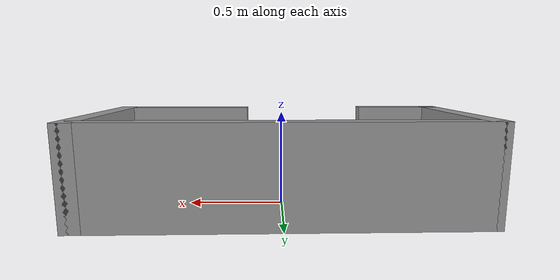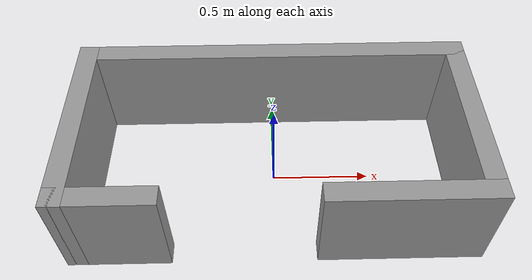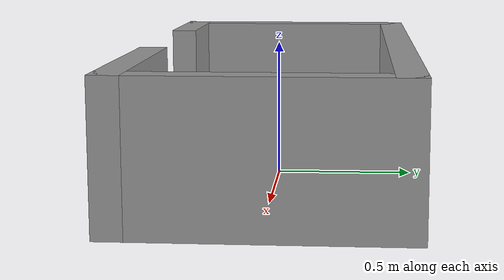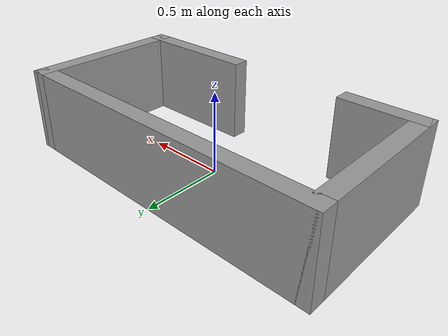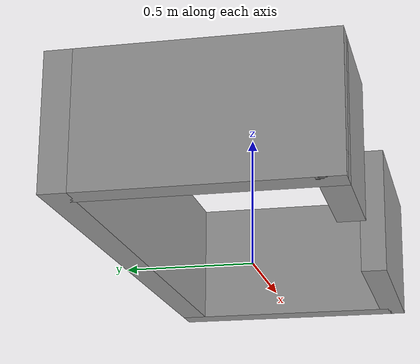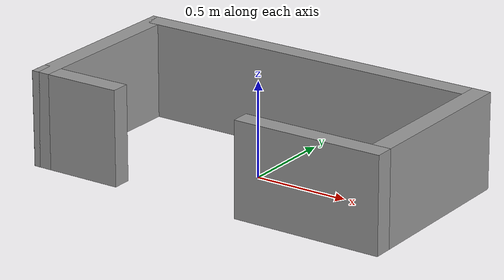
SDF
<?xml version='1.0'?>
<sdf version='1.6'>
  <model name='shape1'>
    <pose frame=''>0.001 0.004 0 0 -0 0</pose>
    <link name='Wall_0'>
      <collision name='Wall_0_Collision'>
        <geometry>
          <box>
            <size>2 0.1 0.5</size>
          </box>
        </geometry>
        <pose frame=''>0 0 0.25 0 -0 0</pose>
      </collision>
      <visual name='Wall_0_Visual'>
        <pose frame=''>0 0 0.25 0 -0 0</pose>
        <geometry>
          <box>
            <size>2 0.1 0.5</size>
          </box>
        </geometry>
        <material>
          <script>
            <uri>file://media/materials/scripts/gazebo.material</uri>
            <name>Gazebo/Grey</name>
          </script>
          <ambient>1 1 1 1</ambient>
        </material>
        <meta>
          <layer>0</layer>
        </meta>
      </visual>
      <pose frame=''>0 0.45 0 0 -0 0</pose>
    </link>
    <link name='Wall_1'>
      <collision name='Wall_1_Collision'>
        <geometry>
          <box>
            <size>1 0.1 0.5</size>
          </box>
        </geometry>
        <pose frame=''>0 0 0.25 0 -0 0</pose>
      </collision>
      <visual name='Wall_1_Visual'>
        <pose frame=''>0 0 0.25 0 -0 0</pose>
        <geometry>
          <box>
            <size>1 0.1 0.5</size>
          </box>
        </geometry>
        <material>
          <script>
            <uri>file://media/materials/scripts/gazebo.material</uri>
            <name>Gazebo/Grey</name>
          </script>
          <ambient>1 1 1 1</ambient>
        </material>
        <meta>
          <layer>0</layer>
        </meta>
      </visual>
      <pose frame=''>0.95 -0 0 0 -0 -1.5708</pose>
    </link>
    <link name='Wall_2'>
      <collision name='Wall_2_Collision'>
        <geometry>
          <box>
            <size>0.8 0.1 0.5</size>
          </box>
        </geometry>
        <pose frame=''>0 0 0.25 0 -0 0</pose>
      </collision>
      <visual name='Wall_2_Visual'>
        <pose frame=''>0 0 0.25 0 -0 0</pose>
        <geometry>
          <box>
            <size>0.8 0.1 0.5</size>
          </box>
        </geometry>
        <material>
          <script>
            <uri>file://media/materials/scripts/gazebo.material</uri>
            <name>Gazebo/Grey</name>
          </script>
          <ambient>1 1 1 1</ambient>
        </material>
        <meta>
          <layer>0</layer>
        </meta>
      </visual>
      <pose frame=''>0.6 -0.45 0 0 -0 3.14159</pose>
    </link>
    <link name='Wall_4'>
      <collision name='Wall_4_Collision'>
        <geometry>
          <box>
            <size>1 0.1 0.5</size>
          </box>
        </geometry>
        <pose frame=''>0 0 0.25 0 -0 0</pose>
      </collision>
      <visual name='Wall_4_Visual'>
        <pose frame=''>0 0 0.25 0 -0 0</pose>
        <geometry>
          <box>
            <size>1 0.1 0.5</size>
          </box>
        </geometry>
        <material>
          <script>
            <uri>file://media/materials/scripts/gazebo.material</uri>
            <name>Gazebo/Grey</name>
          </script>
          <ambient>1 1 1 1</ambient>
        </material>
        <meta>
          <layer>0</layer>
        </meta>
      </visual>
      <pose frame=''>-0.95 -0 0 0 -0 -1.5708</pose>
    </link>
    <link name='Wall_5'>
      <collision name='Wall_5_Collision'>
        <geometry>
          <box>
            <size>0.499474 0.1 0.5</size>
          </box>
        </geometry>
        <pose frame=''>0 0 0.25 0 -0 0</pose>
      </collision>
      <visual name='Wall_5_Visual'>
        <pose frame=''>0 0 0.25 0 -0 0</pose>
        <geometry>
          <box>
            <size>0.499474 0.1 0.5</size>
          </box>
        </geometry>
        <material>
          <script>
            <uri>file://media/materials/scripts/gazebo.material</uri>
            <name>Gazebo/Grey</name>
          </script>
          <ambient>1 1 1 1</ambient>
        </material>
        <meta>
          <layer>0</layer>
        </meta>
      </visual>
      <pose frame=''>-0.75 -0.45 0 0 -0 0</pose>
    </link>
    <static>1</static>
  </model>
</sdf>
